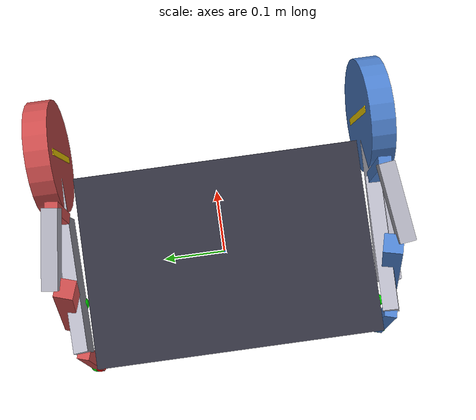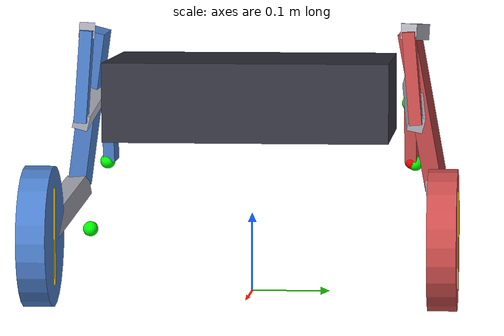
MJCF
<mujoco model="GBC486_primitive">
  <default>
    <default class="touch">
        <geom contype="1" conaffinity="1" />
    </default>
    <default class="untouch">
        <geom contype="0" conaffinity="0" />
    </default>
  </default>
  <compiler angle="radian"/>

  <asset>
    <material name="base_mat" rgba="0.2 0.2 0.25 1" specular="0.5" shininess="0.5"/>
    <material name="arm_blue" rgba="0.3 0.5 0.8 1" specular="0.8" shininess="0.8"/>
    <material name="arm_red"  rgba="0.8 0.3 0.3 1" specular="0.8" shininess="0.8"/>
    <material name="joint_mat" rgba="0.7 0.7 0.75 1" specular="1.0" shininess="1.0"/>
    <material name="wheel_mat" rgba="0.15 0.15 0.2 1" specular="0.3" shininess="0.2"/>
  </asset>

  <worldbody>
    <body name="base" pos="0 0 0.2">
    <!-- "扣雷挖及悠打"，注释下面这行代码可以让车身悬浮在空中 -->
      <joint name="base_free" type="free"/>
      <site name="imu" type="box" size="0.002 0.002 0.002" rgba="1 1 0 1"/>
      <!-- 车身：长方体，尺寸取自原 base_link mesh 大致包围盒 -->
      <geom name="base_box" type="box" size="0.12 0.18 0.05" pos="0 0 0.05"
            material="base_mat" class="touch" mass="8.4"/>

      <!-- ============ 右腿臂（蓝色系，rear: AG-GH） ============ -->
      <body name="AG" pos="-0.01375 -0.1995 0.134" quat="0.707105 0.707108 0 0">
        <joint name="jAG" pos="0 0 0" axis="0 0 1" range="-1.57 0.3"/>
        <site name="AG-D" pos="-0.027 -0.094 0" size="0.002" rgba="0 1 0 1"/>
        <geom type="box" fromto="0 0 0  -0.060152 -0.20641 0.0345" size="0.012"
              material="arm_blue" class="untouch" mass="0.667"/>

        <body name="GH" pos="-0.060152 -0.20641 0.0345">
          <joint name="jGH" pos="0 0 0" axis="0 0 1" range="-0.85 1"/>
          <site name="GH-F" pos="-0.0604 0.0259 -0.03" size="0.01" rgba="0 1 0 1"/>
          <site name="GH-little_wheel" pos="-0.033 -0.062 -0.01" size="0.01" rgba="0 1 0 1"/>
          <geom type="box" fromto="0 0 0  0.25495 -0.039583 0.0155" size="0.014"
                material="joint_mat" class="touch" mass="1.64"/>

          <body name="wheel_right" pos="0.25495 -0.039583 0.0155">
            <joint name="jwheel_right" pos="0 0 0" axis="0 0 -1"/>
            <!-- 轮：cylinder 沿 body 局部 z 轴；与 jwheel_right 轴向一致 -->
            <geom type="cylinder" size="0.088 0.018" material="arm_blue"
                  class="touch" mass="0.322"/>
            <!-- 观察标记：在轮缘贴一段亮色短杆，转动时可视化角速度 -->
            <geom type="box" size="0.005 0.06 0.019" pos="0 0 0"
                  rgba="1 0.85 0 1" class="untouch" mass="0.001"/>
          </body>
        </body>
      </body>

      <!-- ============ 右腿臂（蓝色系，front: AB-BE-EC-CF） ============ -->
      <body name="AB" pos="-0.01375 -0.2155 0.134" quat="0.707105 0.707108 0 0">
        <joint name="jAB" pos="0 0 0" axis="0 0 1" range="-1.57 0.5"/>
        <geom type="box" fromto="0 0 0  0.097866 0.0051238 -0.013" size="0.010"
              material="joint_mat" class="untouch" mass="0.202"/>

        <body name="BE" pos="0.097866 0.0051238 -0.013">
          <joint name="jBE" pos="0 0 0" axis="0 0 1"/>
          <geom type="box" fromto="0 0 0  -0.0090761 -0.11725 0.0094" size="0.008"
                material="arm_blue" class="touch" mass="0.057"/>

          <body name="EC" pos="-0.0090761 -0.11725 0.0094">
            <joint name="jEC" pos="0 0 0" axis="0 0 -1"/>
            <site name="EC-D" pos="-0.115974 0.017382 -0.01" size="0.002" rgba="1 0 0 1"/>
            <geom type="box" fromto="0 0 0  -0.17658 0.044698 -0.0124" size="0.010"
                  material="joint_mat" class="touch" mass="0.128"/>

            <body name="CF" pos="-0.17658 0.044698 -0.0124">
              <joint name="jCF" pos="0 0 0" axis="0 0 -1"/>
              <site name="CF-F" pos="-0.0332 -0.111 0" size="0.002" rgba="1 0 0 1"/>
              <geom type="box" fromto="0 0 0  -0.0332 -0.111 0" size="0.008"
                    material="arm_blue" class="touch" mass="0.057"/>
            </body>
          </body>
        </body>
      </body>

      <!-- ============ 左腿（红色系，front: IJ-JM-MK-KN） ============ -->
      <body name="IJ" pos="-0.01375 0.2165 0.134" quat="0.707105 0.707108 0 0">
        <joint name="jIJ" pos="0 0 0" axis="0 0 -1" range="-0.5 1.57"/>
        <geom type="box" fromto="0 0 0  0.097866 0.0051238 0.013" size="0.010"
              material="joint_mat" class="untouch" mass="0.202"/>

        <body name="JM" pos="0.097866 0.0051238 0.013">
          <joint name="jJM" pos="0 0 0" axis="0 0 -1"/>
          <geom type="box" fromto="0 0 0  -0.0090761 -0.11725 -0.0094" size="0.008"
                material="arm_red" class="touch" mass="0.057"/>

          <body name="MK" pos="-0.0090761 -0.11725 -0.0094">
            <joint name="jMK" pos="0 0 0" axis="0 0 -1"/>
            <site name="MK-L" pos="-0.115974 0.017382 0.01" size="0.01" rgba="1 0 0 1"/>
            <geom type="box" fromto="0 0 0  -0.17658 0.044698 0.0124" size="0.010"
                  material="joint_mat" class="touch" mass="0.128"/>

            <body name="KN" pos="-0.17658 0.044698 0.0124">
              <joint name="jKN" pos="0 0 0" axis="0 0 1"/>
              <site name="KN-N" pos="-0.0332 -0.111 0" size="0.01" rgba="1 0 0 1"/>
              <geom type="box" fromto="0 0 0  -0.0332 -0.111 0" size="0.008"
                    material="arm_red" class="touch" mass="0.057"/>
            </body>
          </body>
        </body>
      </body>

      <!-- ============ 左腿（红色系，rear: IO-OP） ============ -->
      <body name="IO" pos="-0.01375 0.2005 0.134" quat="0.707105 0.707108 0 0">
        <joint name="jIO" pos="0 0 0" axis="0 0 -1" range="-0.3 1.57"/>
        <site name="IO-L" pos="-0.027 -0.094 0" size="0.01" rgba="0 1 0 1"/>
        <geom type="box" fromto="0 0 0  -0.060152 -0.20641 -0.0345" size="0.012"
              material="arm_red" class="untouch" mass="0.667"/>

        <body name="OP" pos="-0.060152 -0.20641 -0.0345">
          <joint name="jOP" pos="0 0 0" axis="0 0 -1" range="-1 0.85"/>
          <site name="OP-N" pos="-0.0604 0.0259 0.03" size="0.01" rgba="0 1 0 1"/>
          <geom type="box" fromto="0 0 0  0.25495 -0.039576 -0.0155" size="0.014"
                material="joint_mat" class="touch" mass="1.64"/>

          <body name="wheel_left" pos="0.25495 -0.039576 -0.0155">
            <joint name="jwheel_left" pos="0 0 0" axis="0 0 1"/>
            <geom type="cylinder" size="0.088 0.018" material="arm_red"
                  class="touch" mass="0.322"/>
            <!-- 观察标记：与右轮对称的亮色短杆 -->
            <geom type="box" size="0.005 0.06 0.019" pos="0 0 0"
                  rgba="1 0.85 0 1" class="untouch" mass="0.001"/>
          </body>
        </body>
      </body>
    </body>
  </worldbody>

  <equality>
    <connect name="right_D" site1="EC-D" site2="AG-D" solref="0.001 1" solimp="0.99 0.99 0.01 0.5 2"/>
    <connect name="right_F" site1="CF-F" site2="GH-F" solref="0.001 1" solimp="0.99 0.99 0.01 0.5 2"/>
    <connect name="left_L"  site1="IO-L" site2="MK-L" solref="0.001 1" solimp="0.99 0.99 0.01 0.5 2"/>
    <connect name="left_F"  site1="OP-N" site2="KN-N" solref="0.001 1" solimp="0.99 0.99 0.01 0.5 2"/>
  </equality>

  <actuator>
    <general name="Right_front_joint_act" joint="jAB"         gainprm="1"  ctrlrange="-20 +20"/>
    <general name="Right_rear_joint_act"  joint="jAG"         gainprm="1"  ctrlrange="-20 +20"/>
    <general name="Left_front_joint_act"  joint="jIJ"         gainprm="1"  ctrlrange="-20 +20"/>
    <general name="Left_rear_joint_act"   joint="jIO"         gainprm="1"  ctrlrange="-20 +20"/>
    <general name="Right_Wheel_act"       joint="jwheel_right" gainprm="1"  ctrlrange="-4 +4"/>
    <general name="Left_Wheel_act"        joint="jwheel_left"  gainprm="-1" ctrlrange="-4 +4"/>
  </actuator>

  <sensor>
    <framequat name='orientation' objtype='site' objname='imu'/>
    <gyro      name='gyro'        site='imu'/>
    <jointpos joint="jwheel_right" name="Right_Wheel_pos"/>
    <jointpos joint="jwheel_left"  name="Left_Wheel_pos"/>
    <jointpos joint="jAB" name="Right_front_joint_pos"/>
    <jointpos joint="jAG" name="Right_rear_joint_pos"/>
    <jointpos joint="jIJ" name="Left_front_joint_pos"/>
    <jointpos joint="jIO" name="Left_rear_joint_pos"/>
  </sensor>
</mujoco>
